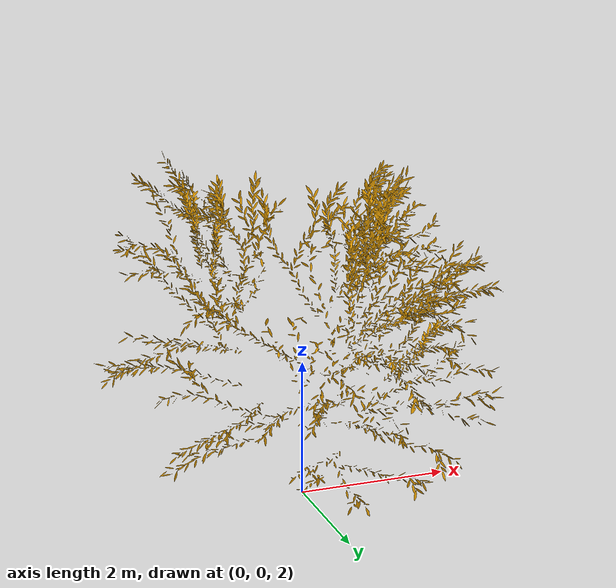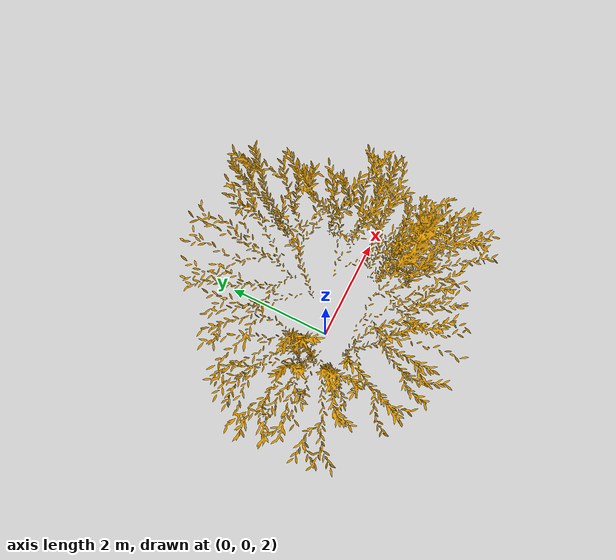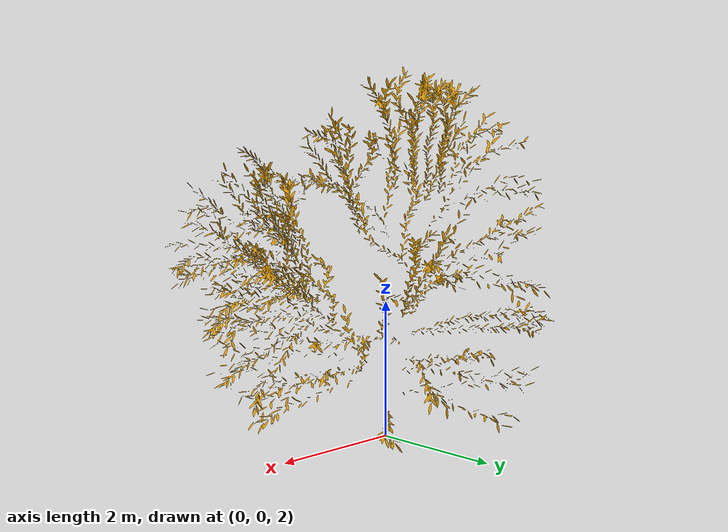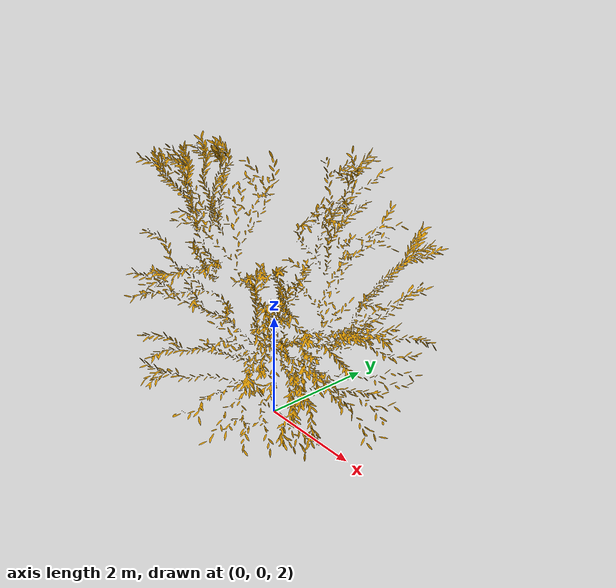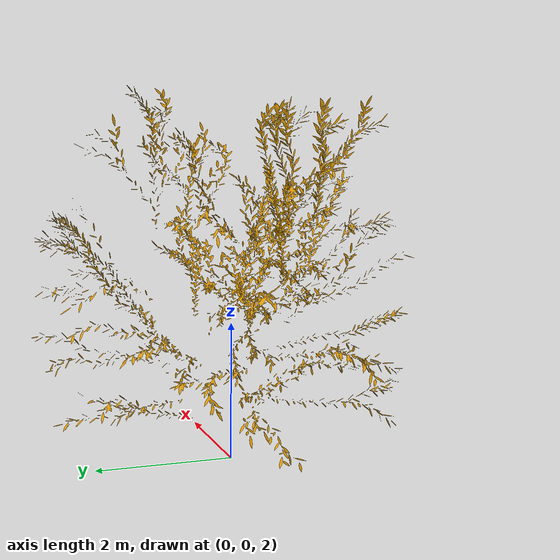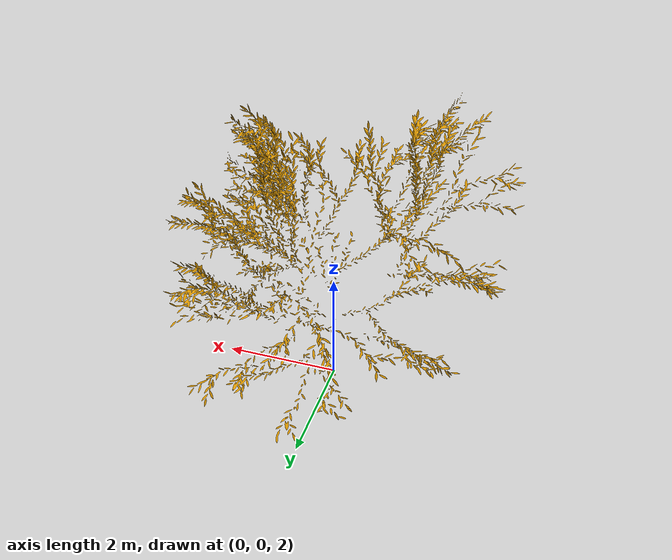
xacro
<robot name="robot">
  <link name="easy_world_leaves001_link">
    <inertial>
      <origin xyz="0 0 0" rpy="0 0 0" />
      <mass value="1" />
      <inertia ixx="1" ixy="0" ixz="0" iyy="1" iyz="0" izz="1" />
    </inertial>
    <visual>
      <origin xyz="0 0 0" rpy="0 0 0" />
      <geometry>
        <mesh filename="package://custom_gazebo_world/world_type/easy_world/meshes/easy_world_leaves001.dae" />
      </geometry>
    </visual>
  </link>

  <gazebo> <static>true</static></gazebo>
</robot>
